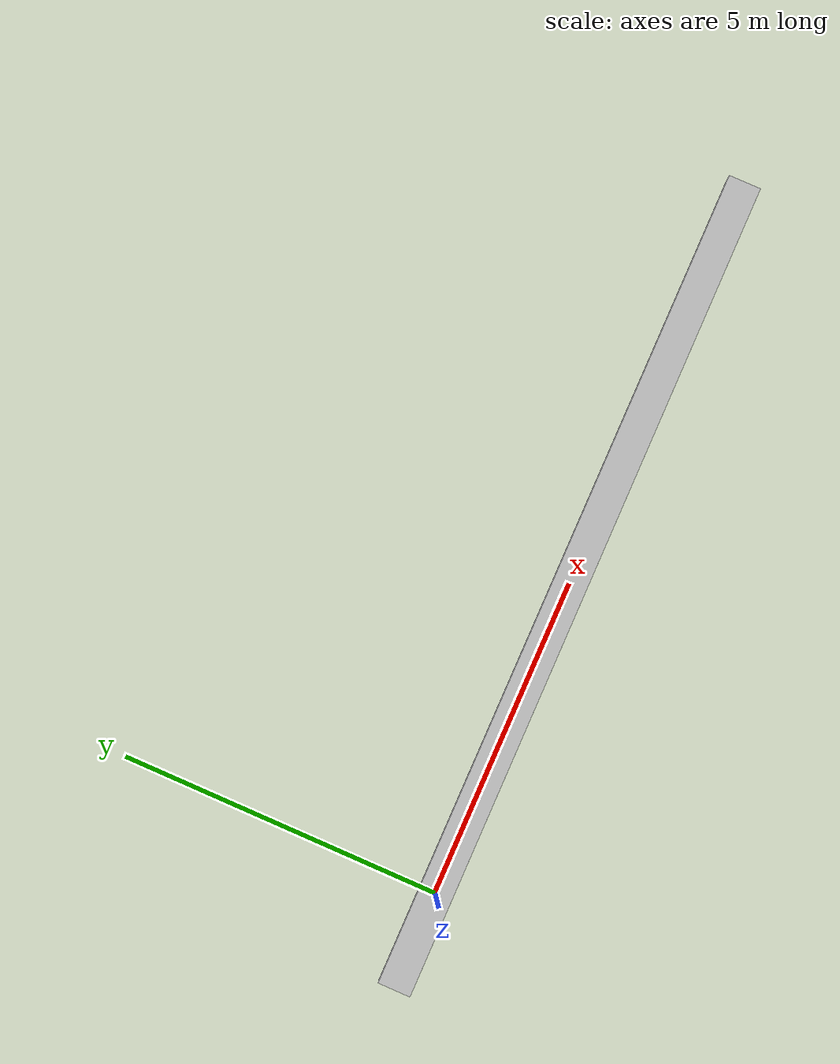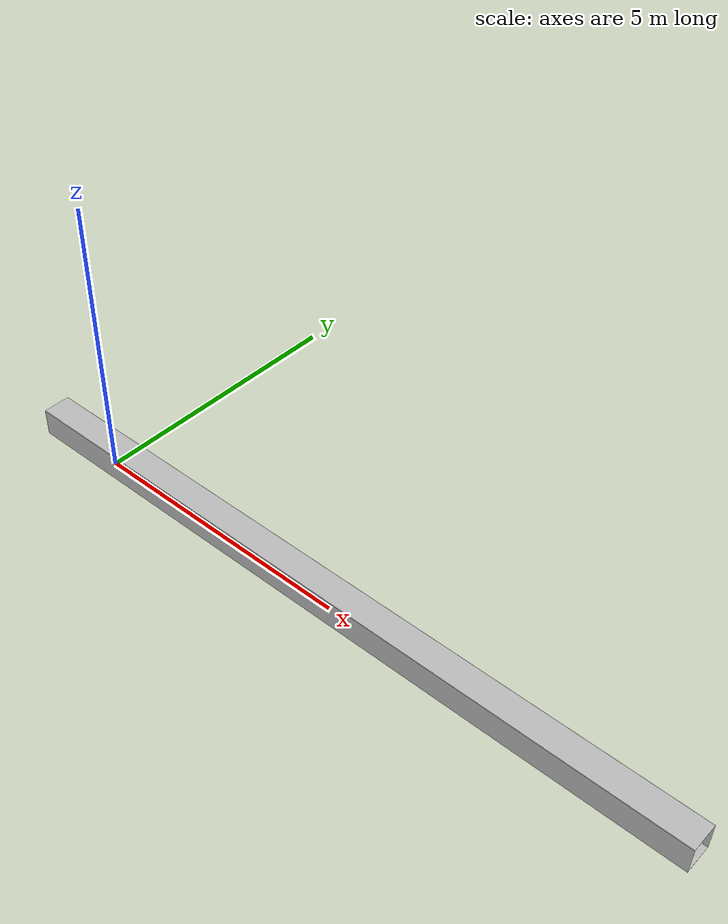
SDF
<?xml version='1.0'?>
<sdf version="1.4">
  <model name="hallway">
    <static>true</static>
    <link name="right_wall">
      <pose>5 -0.25 0.25 0 0 0</pose>
      <visual name="visual">
        <geometry>
          <box>
            <size>13 0.01 0.5</size>
          </box>
        </geometry>
        <material>
          <script>
            <uri>model://hallway/materials/scripts</uri>
            <name>feature_1</name>
          </script>
        </material>
      </visual>
    </link>
    <link name="left_wall">
      <pose>5 0.25 0.25 0 0 0</pose>
      <visual name="visual">
        <geometry>
          <box>
            <size>13 0.01 0.5</size>
          </box>
        </geometry>
        <material>
          <script>
            <uri>model://hallway/materials/scripts</uri>
            <name>feature_2</name>
          </script>
        </material>
      </visual>
    </link>
    <link name="bot_wall">
      <pose>5 0 0 0 0 0</pose>
      <visual name="visual">
        <geometry>
          <box>
            <size>13 0.5 0.01</size>
          </box>
        </geometry>
        <material>
          <script>
            <uri>model://hallway/materials/scripts</uri>
            <name>feature_3</name>
          </script>
        </material>
      </visual>
    </link>
    <link name="top_wall">
      <pose>5 0 0.5 0 0 0</pose>
      <visual name="visual">
        <geometry>
          <box>
            <size>13 0.5 0.01</size>
          </box>
        </geometry>
        <material>
          <script>
            <uri>model://hallway/materials/scripts</uri>
            <name>feature_4</name>
          </script>
        </material>
      </visual>
    </link>
  </model>
</sdf>
